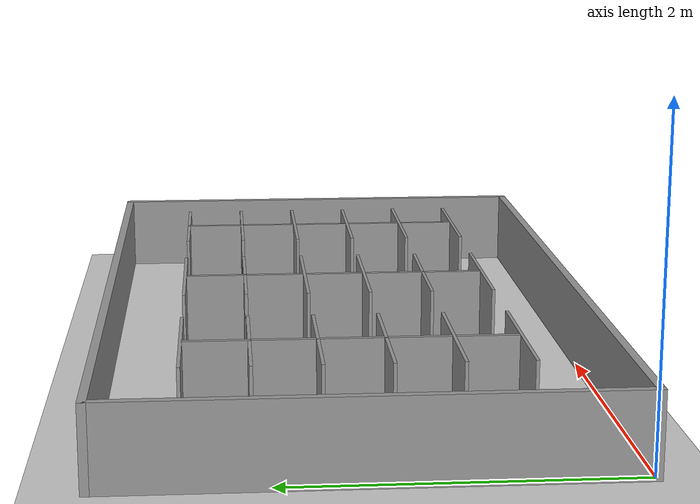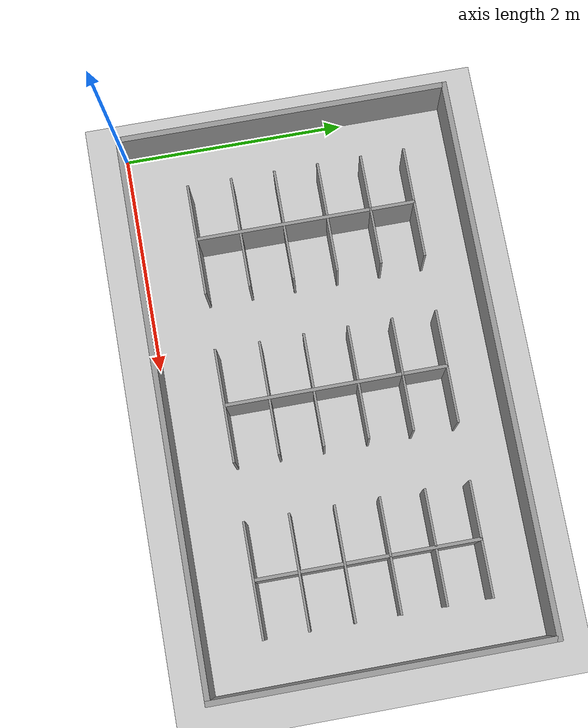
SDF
<sdf version="1.6">
 <world name="default">
  <light name="sun" type="directional">
   <pose>0 0 10 0 -0 0</pose>
   <diffuse>0.8 0.8 0.8 1</diffuse>
   <specular>0.2 0.2 0.2 1</specular>
   <attenuation>
    <range>1000</range>
    <constant>0.9</constant>
    <linear>0.01</linear>
    <quadratic>0.001</quadratic>
   </attenuation>
   <direction>-0.5 0.1 -0.9</direction>
  </light>
  <model name="ground_plane">
   <static>1</static>
   <link name="link">
    <collision name="collision">
     <geometry><plane><normal>0 0 1</normal><size>100 100</size></plane></geometry>
     <surface>
      <contact><collide_bitmask>65535</collide_bitmask></contact>
      <friction><ode><mu>100</mu><mu2>50</mu2></ode></friction>
     </surface>
    </collision>
    <visual name="visual">
     <cast_shadows>0</cast_shadows>
     <geometry><plane><normal>0 0 1</normal><size>100 100</size></plane></geometry>
     <material>
      <script><uri>file://media/materials/scripts/gazebo.material</uri><name>Gazebo/Grey</name></script>
     </material>
    </visual>
   </link>
  </model>
  <gravity>0 0 -9.8</gravity>
  <magnetic_field>6e-06 2.3e-05 -4.2e-05</magnetic_field>
  <atmosphere type="adiabatic"/>
  <physics name="default_physics" default="0" type="ode">
   <max_step_size>0.001</max_step_size>
   <real_time_factor>1</real_time_factor>
   <real_time_update_rate>1000</real_time_update_rate>
  </physics>
  <scene><ambient>0.4 0.4 0.4 1</ambient><background>0.7 0.7 0.7 1</background><shadows>1</shadows></scene>
  <audio><device>default</device></audio>
  <spherical_coordinates>
   <surface_model>EARTH_WGS84</surface_model>
   <latitude_deg>0</latitude_deg>
   <longitude_deg>0</longitude_deg>
   <elevation>0</elevation>
   <heading_deg>0</heading_deg>
  </spherical_coordinates>
  <model name="lanes">
   <pose>1 1.50955 0 0 -0 0</pose>
   <link name="Wall_0">
    <collision name="Wall_0_Collision">
     <geometry><box><size>1 0.02 0.5</size></box></geometry>
     <pose>0 0 0.25 0 -0 0</pose>
    </collision>
    <visual name="Wall_0_Visual">
     <pose>0 0 0.25 0 -0 0</pose>
     <geometry><box><size>1 0.02 0.5</size></box></geometry>
     <material>
      <script><uri>file://media/materials/scripts/gazebo.material</uri><name>Gazebo/Grey</name></script>
      <ambient>1 1 1 1</ambient>
     </material>
     <meta><layer>0</layer></meta>
    </visual>
    <pose>-0 -0.97 0 0 -0 0</pose>
   </link>
   <link name="Wall_12">
    <collision name="Wall_12_Collision">
     <geometry><box><size>1 0.02 0.5</size></box></geometry>
     <pose>0 0 0.25 0 -0 0</pose>
    </collision>
    <visual name="Wall_12_Visual">
     <pose>0 0 0.25 0 -0 0</pose>
     <geometry><box><size>1 0.02 0.5</size></box></geometry>
     <material>
      <script><uri>file://media/materials/scripts/gazebo.material</uri><name>Gazebo/Grey</name></script>
      <ambient>1 1 1 1</ambient>
     </material>
     <meta><layer>0</layer></meta>
    </visual>
    <pose>-0 -0.582 0 0 -0 0</pose>
   </link>
   <link name="Wall_14">
    <collision name="Wall_14_Collision">
     <geometry><box><size>1 0.02 0.5</size></box></geometry>
     <pose>0 0 0.25 0 -0 0</pose>
    </collision>
    <visual name="Wall_14_Visual">
     <pose>0 0 0.25 0 -0 0</pose>
     <geometry><box><size>1 0.02 0.5</size></box></geometry>
     <material>
      <script><uri>file://media/materials/scripts/gazebo.material</uri><name>Gazebo/Grey</name></script>
      <ambient>1 1 1 1</ambient>
     </material>
     <meta><layer>0</layer></meta>
    </visual>
    <pose>-0 -0.194 0 0 -0 0</pose>
   </link>
   <link name="Wall_16">
    <collision name="Wall_16_Collision">
     <geometry><box><size>1 0.02 0.5</size></box></geometry>
     <pose>0 0 0.25 0 -0 0</pose>
    </collision>
    <visual name="Wall_16_Visual">
     <pose>0 0 0.25 0 -0 0</pose>
     <geometry><box><size>1 0.02 0.5</size></box></geometry>
     <material>
      <script><uri>file://media/materials/scripts/gazebo.material</uri><name>Gazebo/Grey</name></script>
      <ambient>1 1 1 1</ambient>
     </material>
     <meta><layer>0</layer></meta>
    </visual>
    <pose>-0 0.194 0 0 -0 0</pose>
   </link>
   <link name="Wall_20">
    <collision name="Wall_20_Collision">
     <geometry><box><size>1 0.02 0.5</size></box></geometry>
     <pose>0 0 0.25 0 -0 0</pose>
    </collision>
    <visual name="Wall_20_Visual">
     <pose>0 0 0.25 0 -0 0</pose>
     <geometry><box><size>1 0.02 0.5</size></box></geometry>
     <material>
      <script><uri>file://media/materials/scripts/gazebo.material</uri><name>Gazebo/Grey</name></script>
      <ambient>1 1 1 1</ambient>
     </material>
     <meta><layer>0</layer></meta>
    </visual>
    <pose>-0 0.582 0 0 -0 0</pose>
   </link>
   <link name="Wall_22">
    <collision name="Wall_22_Collision">
     <geometry><box><size>1 0.02 0.5</size></box></geometry>
     <pose>0 0 0.25 0 -0 0</pose>
    </collision>
    <visual name="Wall_22_Visual">
     <pose>0 0 0.25 0 -0 0</pose>
     <geometry><box><size>1 0.02 0.5</size></box></geometry>
     <material>
      <script><uri>file://media/materials/scripts/gazebo.material</uri><name>Gazebo/Grey</name></script>
      <ambient>1 1 1 1</ambient>
     </material>
     <meta><layer>0</layer></meta>
    </visual>
    <pose>-0 0.97 0 0 -0 0</pose>
   </link>
   <link name="Wall_24">
    <collision name="Wall_24_Collision">
     <geometry><box><size>1.94 0.03 0.5</size></box></geometry>
     <pose>0 0 0.25 0 -0 0</pose>
    </collision>
    <visual name="Wall_24_Visual">
     <pose>0 0 0.25 0 -0 0</pose>
     <geometry><box><size>1.94 0.03 0.5</size></box></geometry>
     <material>
      <script><uri>file://media/materials/scripts/gazebo.material</uri><name>Gazebo/Grey</name></script>
      <ambient>1 1 1 1</ambient>
     </material>
     <meta><layer>0</layer></meta>
    </visual>
    <pose>-0 0.005 0 0 -0 1.5708</pose>
   </link>
   <static>1</static>
  </model>
  <model name="parkingwalls">
   <pose>2.44582 1.47525 0 0 -0 0</pose>
   <link name="Wall_0">
    <collision name="Wall_0_Collision">
     <geometry><box><size>5 0.05 0.5</size></box></geometry>
     <pose>0 0 0.25 0 -0 0</pose>
    </collision>
    <visual name="Wall_0_Visual">
     <pose>0 0 0.25 0 -0 0</pose>
     <geometry><box><size>5 0.05 0.5</size></box></geometry>
     <material>
      <script><uri>file://media/materials/scripts/gazebo.material</uri><name>Gazebo/Grey</name></script>
      <ambient>1 1 1 1</ambient>
     </material>
     <meta><layer>0</layer></meta>
    </visual>
    <pose>0 -1.475 0 0 -0 0</pose>
   </link>
   <link name="Wall_1">
    <collision name="Wall_1_Collision">
     <geometry><box><size>3 0.05 0.5</size></box></geometry>
     <pose>0 0 0.25 0 -0 0</pose>
    </collision>
    <visual name="Wall_1_Visual">
     <pose>0 0 0.25 0 -0 0</pose>
     <geometry><box><size>3 0.05 0.5</size></box></geometry>
     <material>
      <script><uri>file://media/materials/scripts/gazebo.material</uri><name>Gazebo/Grey</name></script>
      <ambient>1 1 1 1</ambient>
     </material>
     <meta><layer>0</layer></meta>
    </visual>
    <pose>2.475 0 0 0 -0 1.5708</pose>
   </link>
   <link name="Wall_2">
    <collision name="Wall_2_Collision">
     <geometry><box><size>5 0.05 0.5</size></box></geometry>
     <pose>0 0 0.25 0 -0 0</pose>
    </collision>
    <visual name="Wall_2_Visual">
     <pose>0 0 0.25 0 -0 0</pose>
     <geometry><box><size>5 0.05 0.5</size></box></geometry>
     <material>
      <script><uri>file://media/materials/scripts/gazebo.material</uri><name>Gazebo/Grey</name></script>
      <ambient>1 1 1 1</ambient>
     </material>
     <meta><layer>0</layer></meta>
    </visual>
    <pose>0 1.475 0 0 -0 3.14159</pose>
   </link>
   <link name="Wall_3">
    <collision name="Wall_3_Collision">
     <geometry><box><size>3 0.05 0.5</size></box></geometry>
     <pose>0 0 0.25 0 -0 0</pose>
    </collision>
    <visual name="Wall_3_Visual">
     <pose>0 0 0.25 0 -0 0</pose>
     <geometry><box><size>3 0.05 0.5</size></box></geometry>
     <material>
      <script><uri>file://media/materials/scripts/gazebo.material</uri><name>Gazebo/Grey</name></script>
      <ambient>1 1 1 1</ambient>
     </material>
     <meta><layer>0</layer></meta>
    </visual>
    <pose>-2.475 0 0 0 -0 -1.5708</pose>
   </link>
   <static>1</static>
  </model>
  <model name="lanes_clone">
   <pose>2.49848 1.50881 0 0 -0 0</pose>
   <link name="Wall_0">
    <collision name="Wall_0_Collision">
     <geometry><box><size>1 0.02 0.5</size></box></geometry>
     <pose>0 0 0.25 0 -0 0</pose>
    </collision>
    <visual name="Wall_0_Visual">
     <pose>0 0 0.25 0 -0 0</pose>
     <geometry><box><size>1 0.02 0.5</size></box></geometry>
     <material>
      <script><uri>file://media/materials/scripts/gazebo.material</uri><name>Gazebo/Grey</name></script>
      <ambient>1 1 1 1</ambient>
     </material>
     <meta><layer>0</layer></meta>
    </visual>
    <pose>-0 -0.97 0 0 -0 0</pose>
   </link>
   <link name="Wall_12">
    <collision name="Wall_12_Collision">
     <geometry><box><size>1 0.02 0.5</size></box></geometry>
     <pose>0 0 0.25 0 -0 0</pose>
    </collision>
    <visual name="Wall_12_Visual">
     <pose>0 0 0.25 0 -0 0</pose>
     <geometry><box><size>1 0.02 0.5</size></box></geometry>
     <material>
      <script><uri>file://media/materials/scripts/gazebo.material</uri><name>Gazebo/Grey</name></script>
      <ambient>1 1 1 1</ambient>
     </material>
     <meta><layer>0</layer></meta>
    </visual>
    <pose>-0 -0.582 0 0 -0 0</pose>
   </link>
   <link name="Wall_14">
    <collision name="Wall_14_Collision">
     <geometry><box><size>1 0.02 0.5</size></box></geometry>
     <pose>0 0 0.25 0 -0 0</pose>
    </collision>
    <visual name="Wall_14_Visual">
     <pose>0 0 0.25 0 -0 0</pose>
     <geometry><box><size>1 0.02 0.5</size></box></geometry>
     <material>
      <script><uri>file://media/materials/scripts/gazebo.material</uri><name>Gazebo/Grey</name></script>
      <ambient>1 1 1 1</ambient>
     </material>
     <meta><layer>0</layer></meta>
    </visual>
    <pose>-0 -0.194 0 0 -0 0</pose>
   </link>
   <link name="Wall_16">
    <collision name="Wall_16_Collision">
     <geometry><box><size>1 0.02 0.5</size></box></geometry>
     <pose>0 0 0.25 0 -0 0</pose>
    </collision>
    <visual name="Wall_16_Visual">
     <pose>0 0 0.25 0 -0 0</pose>
     <geometry><box><size>1 0.02 0.5</size></box></geometry>
     <material>
      <script><uri>file://media/materials/scripts/gazebo.material</uri><name>Gazebo/Grey</name></script>
      <ambient>1 1 1 1</ambient>
     </material>
     <meta><layer>0</layer></meta>
    </visual>
    <pose>-0 0.194 0 0 -0 0</pose>
   </link>
   <link name="Wall_20">
    <collision name="Wall_20_Collision">
     <geometry><box><size>1 0.02 0.5</size></box></geometry>
     <pose>0 0 0.25 0 -0 0</pose>
    </collision>
    <visual name="Wall_20_Visual">
     <pose>0 0 0.25 0 -0 0</pose>
     <geometry><box><size>1 0.02 0.5</size></box></geometry>
     <material>
      <script><uri>file://media/materials/scripts/gazebo.material</uri><name>Gazebo/Grey</name></script>
      <ambient>1 1 1 1</ambient>
     </material>
     <meta><layer>0</layer></meta>
    </visual>
    <pose>-0 0.582 0 0 -0 0</pose>
   </link>
   <link name="Wall_22">
    <collision name="Wall_22_Collision">
     <geometry><box><size>1 0.02 0.5</size></box></geometry>
     <pose>0 0 0.25 0 -0 0</pose>
    </collision>
    <visual name="Wall_22_Visual">
     <pose>0 0 0.25 0 -0 0</pose>
     <geometry><box><size>1 0.02 0.5</size></box></geometry>
     <material>
      <script><uri>file://media/materials/scripts/gazebo.material</uri><name>Gazebo/Grey</name></script>
      <ambient>1 1 1 1</ambient>
     </material>
     <meta><layer>0</layer></meta>
    </visual>
    <pose>-0 0.97 0 0 -0 0</pose>
   </link>
   <link name="Wall_24">
    <collision name="Wall_24_Collision">
     <geometry><box><size>1.94 0.03 0.5</size></box></geometry>
     <pose>0 0 0.25 0 -0 0</pose>
    </collision>
    <visual name="Wall_24_Visual">
     <pose>0 0 0.25 0 -0 0</pose>
     <geometry><box><size>1.94 0.03 0.5</size></box></geometry>
     <material>
      <script><uri>file://media/materials/scripts/gazebo.material</uri><name>Gazebo/Grey</name></script>
      <ambient>1 1 1 1</ambient>
     </material>
     <meta><layer>0</layer></meta>
    </visual>
    <pose>-0 0.005 0 0 -0 1.5708</pose>
   </link>
   <static>1</static>
  </model>
  <model name="lanes_clone_0">
   <pose>4.00113 1.50504 0 0 -0 0</pose>
   <link name="Wall_0">
    <collision name="Wall_0_Collision">
     <geometry><box><size>1 0.02 0.5</size></box></geometry>
     <pose>0 0 0.25 0 -0 0</pose>
    </collision>
    <visual name="Wall_0_Visual">
     <pose>0 0 0.25 0 -0 0</pose>
     <geometry><box><size>1 0.02 0.5</size></box></geometry>
     <material>
      <script><uri>file://media/materials/scripts/gazebo.material</uri><name>Gazebo/Grey</name></script>
      <ambient>1 1 1 1</ambient>
     </material>
     <meta><layer>0</layer></meta>
    </visual>
    <pose>-0 -0.97 0 0 -0 0</pose>
   </link>
   <link name="Wall_12">
    <collision name="Wall_12_Collision">
     <geometry><box><size>1 0.02 0.5</size></box></geometry>
     <pose>0 0 0.25 0 -0 0</pose>
    </collision>
    <visual name="Wall_12_Visual">
     <pose>0 0 0.25 0 -0 0</pose>
     <geometry><box><size>1 0.02 0.5</size></box></geometry>
     <material>
      <script><uri>file://media/materials/scripts/gazebo.material</uri><name>Gazebo/Grey</name></script>
      <ambient>1 1 1 1</ambient>
     </material>
     <meta><layer>0</layer></meta>
    </visual>
    <pose>-0 -0.582 0 0 -0 0</pose>
   </link>
   <link name="Wall_14">
    <collision name="Wall_14_Collision">
     <geometry><box><size>1 0.02 0.5</size></box></geometry>
     <pose>0 0 0.25 0 -0 0</pose>
    </collision>
    <visual name="Wall_14_Visual">
     <pose>0 0 0.25 0 -0 0</pose>
     <geometry><box><size>1 0.02 0.5</size></box></geometry>
     <material>
      <script><uri>file://media/materials/scripts/gazebo.material</uri><name>Gazebo/Grey</name></script>
      <ambient>1 1 1 1</ambient>
     </material>
     <meta><layer>0</layer></meta>
    </visual>
    <pose>-0 -0.194 0 0 -0 0</pose>
   </link>
   <link name="Wall_16">
    <collision name="Wall_16_Collision">
     <geometry><box><size>1 0.02 0.5</size></box></geometry>
     <pose>0 0 0.25 0 -0 0</pose>
    </collision>
    <visual name="Wall_16_Visual">
     <pose>0 0 0.25 0 -0 0</pose>
     <geometry><box><size>1 0.02 0.5</size></box></geometry>
     <material>
      <script><uri>file://media/materials/scripts/gazebo.material</uri><name>Gazebo/Grey</name></script>
      <ambient>1 1 1 1</ambient>
     </material>
     <meta><layer>0</layer></meta>
    </visual>
    <pose>-0 0.194 0 0 -0 0</pose>
   </link>
   <link name="Wall_20">
    <collision name="Wall_20_Collision">
     <geometry><box><size>1 0.02 0.5</size></box></geometry>
     <pose>0 0 0.25 0 -0 0</pose>
    </collision>
    <visual name="Wall_20_Visual">
     <pose>0 0 0.25 0 -0 0</pose>
     <geometry><box><size>1 0.02 0.5</size></box></geometry>
     <material>
      <script><uri>file://media/materials/scripts/gazebo.material</uri><name>Gazebo/Grey</name></script>
      <ambient>1 1 1 1</ambient>
     </material>
     <meta><layer>0</layer></meta>
    </visual>
    <pose>-0 0.582 0 0 -0 0</pose>
   </link>
   <link name="Wall_22">
    <collision name="Wall_22_Collision">
     <geometry><box><size>1 0.02 0.5</size></box></geometry>
     <pose>0 0 0.25 0 -0 0</pose>
    </collision>
    <visual name="Wall_22_Visual">
     <pose>0 0 0.25 0 -0 0</pose>
     <geometry><box><size>1 0.02 0.5</size></box></geometry>
     <material>
      <script><uri>file://media/materials/scripts/gazebo.material</uri><name>Gazebo/Grey</name></script>
      <ambient>1 1 1 1</ambient>
     </material>
     <meta><layer>0</layer></meta>
    </visual>
    <pose>-0 0.97 0 0 -0 0</pose>
   </link>
   <link name="Wall_24">
    <collision name="Wall_24_Collision">
     <geometry><box><size>1.94 0.03 0.5</size></box></geometry>
     <pose>0 0 0.25 0 -0 0</pose>
    </collision>
    <visual name="Wall_24_Visual">
     <pose>0 0 0.25 0 -0 0</pose>
     <geometry><box><size>1.94 0.03 0.5</size></box></geometry>
     <material>
      <script><uri>file://media/materials/scripts/gazebo.material</uri><name>Gazebo/Grey</name></script>
      <ambient>1 1 1 1</ambient>
     </material>
     <meta><layer>0</layer></meta>
    </visual>
    <pose>-0 0.005 0 0 -0 1.5708</pose>
   </link>
   <static>1</static>
  </model>
 </world>
</sdf>
